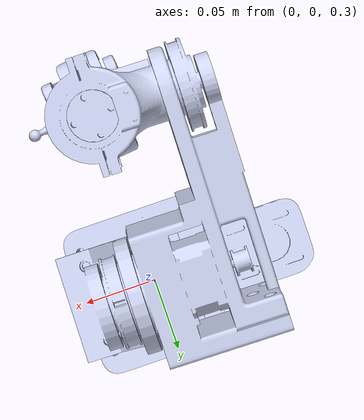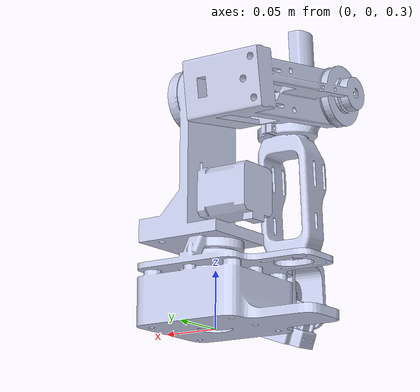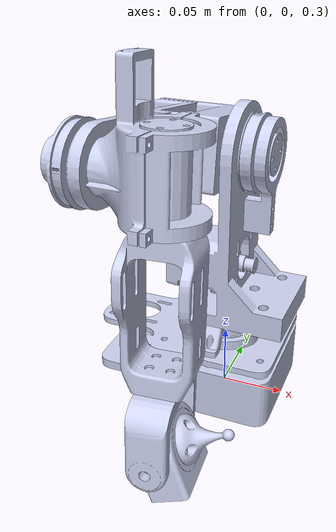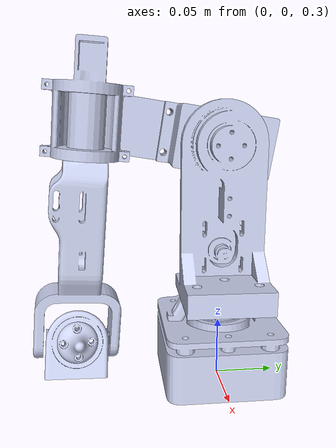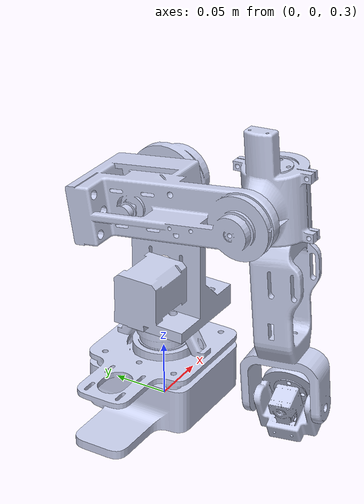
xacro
<?xml version="1.0"?>
<robot xmlns:xacro="http://www.ros.org/wiki/xacro">
  <xacro:property name="joint_damping" value="1.0"/>

  <link name="world"/>

  <joint name="base_joint" type="fixed">
    <parent link="world"/>
    <child link="base_link"/>
    <origin rpy="0 0 0" xyz="0.0 0.0 0.3"/>
  </joint>

  <link
    name="base_link">
    <inertial>
      <origin
        xyz="0 0 2"
        rpy="0 0 0" />
      <mass
        value="0.05" />
      <inertia ixx="0.0001" ixy="0.000"  ixz="0.000"
         iyy="0.0001" iyz="0.000"
         izz="0.0001"/>
    </inertial>
    <visual>
      <origin
        xyz="0 0 0"
        rpy="0 0 0" />
      <geometry>
        <mesh
          filename="package://nick_bot/meshes/base_link.STL" />
      </geometry>
      <material
        name="">
        <color
          rgba="0.79216 0.81961 0.93333 1" />
      </material>
    </visual>
    <collision>
      <origin
        xyz="0 0 0"
        rpy="0 0 0" />
      <geometry>
        <mesh
          filename="package://nick_bot/meshes/base_link.STL" />
      </geometry>
    </collision>
  </link>
  <link
    name="link_1">
    <inertial>
      <origin
        xyz="0.0061634 0.0010038 0.060589"
        rpy="0 0 0" />
      <mass
        value="0.05" />
      <inertia ixx="0.0001" ixy="0.000"  ixz="0.000"
         iyy="0.0001" iyz="0.000"
         izz="0.0001"/>
    </inertial>
    <visual>
      <origin
        xyz="0 0 0"
        rpy="0 0 0" />
      <geometry>
        <mesh
          filename="package://nick_bot/meshes/link_1.STL" />
      </geometry>
      <material
        name="">
        <color
          rgba="0.79216 0.81961 0.93333 1" />
      </material>
    </visual>
    <collision>
      <origin
        xyz="0 0 0"
        rpy="0 0 0" />
      <geometry>
        <mesh
          filename="package://nick_bot/meshes/link_1.STL" />
      </geometry>
    </collision>
  </link>
  <joint
    name="joint_1"
    type="revolute">
    <origin
      xyz="0 0 0.064087"
      rpy="0.017453 0 -0.0098054" />
    <parent
      link="base_link" />
    <child
      link="link_1" />
    <axis
      xyz="0 0.017452 0.99985" />
    <limit
      lower="-2.7"
      upper="2.7"
      effort="300.0"
      velocity="4.0" />
  </joint>
  <link
    name="link_2">
    <inertial>
      <origin
        xyz="-0.03205 0.0005952 0.018073"
        rpy="0 0 0" />
      <mass
        value="0.05" />
      <inertia ixx="0.0001" ixy="0.000"  ixz="0.000"
         iyy="0.0001" iyz="0.000"
         izz="0.0001"/>
    </inertial>
    <visual>
      <origin
        xyz="0 0 0"
        rpy="0 0 0" />
      <geometry>
        <mesh
          filename="package://nick_bot/meshes/link_2.STL" />
      </geometry>
      <material
        name="">
        <color
          rgba="0.79216 0.81961 0.93333 1" />
      </material>
    </visual>
    <collision>
      <origin
        xyz="0 0 0"
        rpy="0 0 0" />
      <geometry>
        <mesh
          filename="package://nick_bot/meshes/link_2.STL" />
      </geometry>
    </collision>
  </link>
  <joint
    name="joint_2"
    type="revolute">
    <origin
      xyz="0 0.0024593 0.14089"
      rpy="1.4125 -0.0087445 -0.0071993" />
    <parent
      link="link_1" />
    <child
      link="link_2" />
    <axis
      xyz="0.99996 -0.0087252 0.0001523" />
    <limit
      lower="-3.5"
      upper="0.6"
      effort="300"
      velocity="4.0" />
  </joint>
  <link
    name="link_3">
    <inertial>
      <origin
        xyz="-0.014774 0.00011596 -0.0036584"
        rpy="0 0 0" />
      <mass
        value="0.05" />
      <inertia ixx="0.0001" ixy="0.000"  ixz="0.000"
         iyy="0.0001" iyz="0.000"
         izz="0.0001"/>
    </inertial>
    <visual>
      <origin
        xyz="0 0 0"
        rpy="0 0 0" />
      <geometry>
        <mesh
          filename="package://nick_bot/meshes/link_3.STL" />
      </geometry>
      <material
        name="">
        <color
          rgba="0.79216 0.81961 0.93333 1" />
      </material>
    </visual>
    <collision>
      <origin
        xyz="0 0 0"
        rpy="0 0 0" />
      <geometry>
        <mesh
          filename="package://nick_bot/meshes/link_3.STL" />
      </geometry>
    </collision>
  </link>
  <joint
    name="joint_3"
    type="revolute">
    <origin
      xyz="0 0.0019372 0.11098"
      rpy="1.6508 -0.0088619 -0.009271" />
    <parent
      link="link_2" />
    <child
      link="link_3" />
    <axis
      xyz="-0.99996 0.0087252 -0.0001523" />
    <limit
      lower="-0.7"
      upper="4"
      effort="200"
      velocity="4.0" />
  </joint>
  <link
    name="link_4">
    <inertial>
      <origin
        xyz="0.00044646 0.0013719 0.078813"
        rpy="0 0 0" />
      <mass
        value="0.05" />
      <inertia ixx="0.0001" ixy="0.000"  ixz="0.000"
         iyy="0.0001" iyz="0.000"
         izz="0.0001"/>
    </inertial>
    <visual>
      <origin
        xyz="0 0 0"
        rpy="0 0 0" />
      <geometry>
        <mesh
          filename="package://nick_bot/meshes/link_4.STL" />
      </geometry>
      <material
        name="">
        <color
          rgba="0.79216 0.81961 0.93333 1" />
      </material>
    </visual>
    <collision>
      <origin
        xyz="0 0 0"
        rpy="0 0 0" />
      <geometry>
        <mesh
          filename="package://nick_bot/meshes/link_4.STL" />
      </geometry>
    </collision>
  </link>
  <joint
    name="joint_4"
    type="revolute">
    <origin
      xyz="0 0 0"
      rpy="0.015346 0.017326 1.4497" />
    <parent
      link="link_3" />
    <child
      link="link_4" />
    <axis
      xyz="0 -0.017452 -0.99985" />
    <limit
      lower="-3.1415"
      upper="3.1415"
      effort="300"
      velocity="4.0" />
  </joint>
  <link
    name="link_5">
    <inertial>
      <origin
        xyz="1.3718E-06 -0.011218 0.0025865"
        rpy="0 0 0" />
      <mass
        value="0.05" />
      <inertia ixx="0.0001" ixy="0.000"  ixz="0.000"
         iyy="0.0001" iyz="0.000"
         izz="0.0001"/>
    </inertial>
    <visual>
      <origin
        xyz="0 0 0"
        rpy="0 0 0" />
      <geometry>
        <mesh
          filename="package://nick_bot/meshes/link_5.STL" />
      </geometry>
      <material name="">
        <color
          rgba="0.79216 0.81961 0.93333 1" />
      </material>
    </visual>
    <collision>
      <origin
        xyz="0 0 0"
        rpy="0 0 0" />
      <geometry>
        <mesh
          filename="package://nick_bot/meshes/link_5.STL" />
      </geometry>
    </collision>
  </link>
  <joint
    name="joint_5"
    type="fixed">
    <origin
      xyz="0 0.0032854 0.18822"
      rpy="-1.909 0.0001523 3.1329" />
    <parent
      link="link_4" />
    <child
      link="link_5" />
    <axis
      xyz="1 0 0" />
    <limit
      lower="0"
      upper="4"
      effort="200"
      velocity="4.0" />
  </joint>
  <link
    name="end_effector">
    <inertial>
      <origin
        xyz="1.2663E-08 0.020431 2.0602E-08"
        rpy="0 0 0" />
      <mass
        value="0.05" />
      <inertia ixx="0.0001" ixy="0.000"  ixz="0.000"
         iyy="0.0001" iyz="0.000"
         izz="0.0001"/>
    </inertial>
    <visual>
      <origin
        xyz="0 0 0"
        rpy="0 0 0" />
      <geometry>
        <mesh
          filename="package://nick_bot/meshes/end_effector.STL" />
      </geometry>
      <material
        name="">
        <color
          rgba="0.79216 0.81961 0.93333 1" />
      </material>
    </visual>
    <collision>
      <origin
        xyz="0 0 0"
        rpy="0 0 0" />
      <geometry>
        <mesh
          filename="package://nick_bot/meshes/end_effector.STL" />
      </geometry>
    </collision>
  </link>
  <joint
    name="joint_6"
    type="fixed">
    <origin
      xyz="0 0 0"
      rpy="1.5708 0 1.6504" />
    <parent
      link="link_5" />
    <child
      link="end_effector" />
    <axis
      xyz="0 -1 0" />
    <limit
      lower="-3.1415"
      upper="3.1415"
      effort="200"
      velocity="4.0" />
  </joint>

  <gazebo reference="link_1">
    <implicitSpringDamper>True</implicitSpringDamper>
   	<selfCollide>false</selfCollide>
    <turnGravityOff>true</turnGravityOff>
	</gazebo>
	<gazebo reference="link_2">
    <implicitSpringDamper>True</implicitSpringDamper>
   	<selfCollide>false</selfCollide>
    <turnGravityOff>true</turnGravityOff>
	</gazebo>

	<gazebo reference="link_3">
    <implicitSpringDamper>True</implicitSpringDamper>
   	<selfCollide>false</selfCollide>
    <turnGravityOff>true</turnGravityOff>
	</gazebo>

	<gazebo reference="link_4">
    <implicitSpringDamper>True</implicitSpringDamper>
   	<selfCollide>false</selfCollide>
    <turnGravityOff>true</turnGravityOff>
	</gazebo>

	<gazebo reference="link_5">
    <implicitSpringDamper>True</implicitSpringDamper>
   	<selfCollide>false</selfCollide>
    <turnGravityOff>true</turnGravityOff>
	</gazebo>

	<gazebo reference="end_effector">
    <implicitSpringDamper>True</implicitSpringDamper>
   	<selfCollide>false</selfCollide>
    <turnGravityOff>true</turnGravityOff>
	</gazebo>

</robot>
